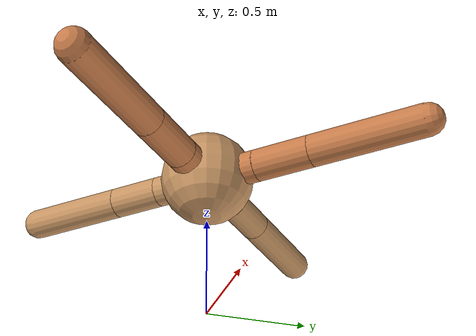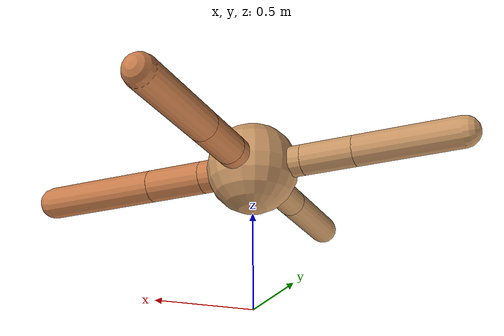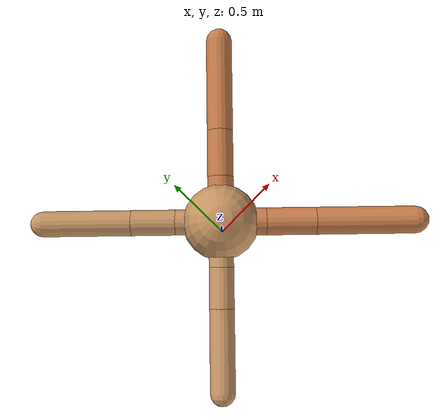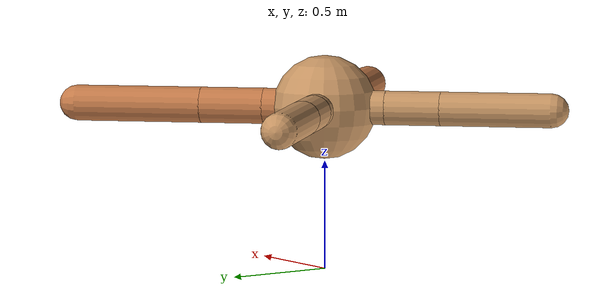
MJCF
<?xml version="1.0" ?>
<mujoco model="ant">

	<compiler angle="degree" coordinate="local" inertiafromgeom="true"/>

	<option integrator="RK4" timestep="0.01"/>

	<custom>

		<numeric data="0.0 0.0 0.55 1.0 0.0 0.0 0.0 0.0 1.0 0.0 -1.0 0.0 -1.0 0.0 1.0" name="init_qpos"/>

	</custom>

	<default>

		<joint armature="1" damping="1" limited="true"/>

		<geom conaffinity="0" condim="3" density="5.0" friction="1.5 0.1 0.1" margin="0.01" rgba="0.8 0.6 0.4 1"/>

	</default>

	<worldbody>

		<body name="torso" pos="0 0 0.75">

			<geom name="torso_geom" pos="0 0 0" size="0.238806772776089" type="sphere"/>

			<!--joint armature="0" damping="0" limited="false" margin="0.01" name="root" pos="0 0 0" type="free"/-->

			<body name="front_left_leg" pos="0 0 0">

				<geom fromto="0 0 0 0.2 0.2 0" name="aux_1_geom" size="0.0825547849038597" type="capsule" rgba=".8 .5 .3 1"/>

				<body name="aux_1" pos="0.2 0.2 0">

					<joint axis="0 0 1" name="hip_1" pos="0.0 0.0 0.0" range="-40 40" type="hinge"/>

					<geom fromto="0 0 0 0.20868841352247675 0.20868841352247675 0" name="left_leg_geom" size="0.0825547849038597" type="capsule" rgba=".8 .5 .3 1"/>

					<body pos="0.20868841352247675 0.20868841352247675 0" name="front_left_foot">

						<joint axis="-1 1 0" name="ankle_1" pos="0.0 0.0 0.0" range="30 100" type="hinge"/>

						<geom fromto="0 0 0 0.4173768270449535 0.4173768270449535 0" name="left_ankle_geom" size="0.0825547849038597" type="capsule" rgba=".8 .5 .3 1"/>

					</body>

				</body>

			</body>

			<body name="front_right_leg" pos="0 0 0">

				<geom fromto="0 0 0 -0.2 0.2 0" name="aux_2_geom" size="0.07996172986911296" type="capsule"/>

				<body name="aux_2" pos="-0.2 0.2 0">

					<joint axis="0 0 1" name="hip_2" pos="0.0 0.0 0.0" range="-40 40" type="hinge"/>

					<geom fromto="0 0 0 -0.1940522665290452 0.1940522665290452 0" name="right_leg_geom" size="0.07996172986911296" type="capsule"/>

					<body pos="-0.1940522665290452 0.1940522665290452 0" name="front_right_foot">

						<joint axis="1 1 0" name="ankle_2" pos="0.0 0.0 0.0" range="-100 -30" type="hinge"/>

						<geom fromto="0 0 0 -0.3881045330580904 0.3881045330580904 0" name="right_ankle_geom" size="0.07996172986911296" type="capsule"/>

					</body>

				</body>

			</body>

			<body name="left_back_leg" pos="0 0 0">

				<geom fromto="0 0 0 -0.2 -0.2 0" name="aux_3_geom" size="0.07818567535397505" type="capsule"/>

				<body name="aux_3" pos="-0.2 -0.2 0">

					<joint axis="0 0 1" name="hip_3" pos="0.0 0.0 0.0" range="-40 40" type="hinge"/>

					<geom fromto="0 0 0 -0.18003614632479306 -0.18003614632479306 0" name="back_leg_geom" size="0.07818567535397505" type="capsule"/>

					<body pos="-0.18003614632479306 -0.18003614632479306 0" name="left_back_foot">

						<joint axis="-1 1 0" name="ankle_3" pos="0.0 0.0 0.0" range="-100 -30" type="hinge"/>

						<geom fromto="0 0 0 -0.3600722926495861 -0.3600722926495861 0" name="third_ankle_geom" size="0.07818567535397505" type="capsule"/>

					</body>

				</body>

			</body>

			<body name="right_back_leg" pos="0 0 0">

				<geom fromto="0 0 0 0.2 -0.2 0" name="aux_4_geom" size="0.08613202848553005" type="capsule" rgba=".8 .5 .3 1"/>

				<body name="aux_4" pos="0.2 -0.2 0">

					<joint axis="0 0 1" name="hip_4" pos="0.0 0.0 0.0" range="-40 40" type="hinge"/>

					<geom fromto="0 0 0 0.21925116094731947 -0.21925116094731947 0" name="rightback_leg_geom" size="0.08613202848553005" type="capsule" rgba=".8 .5 .3 1"/>

					<body pos="0.21925116094731947 -0.21925116094731947 0" name="right_back_foot">

						<joint axis="1 1 0" name="ankle_4" pos="0.0 0.0 0.0" range="30 100" type="hinge"/>

						<geom fromto="0 0 0 0.43850232189463895 -0.43850232189463895 0" name="fourth_ankle_geom" size="0.08613202848553005" type="capsule" rgba=".8 .5 .3 1"/>

					</body>

				</body>

			</body>

		</body>

	</worldbody>

	<actuator>

		<motor ctrllimited="true" ctrlrange="-1.0 1.0" joint="hip_4" gear="150"/>

		<motor ctrllimited="true" ctrlrange="-1.0 1.0" joint="ankle_4" gear="150"/>

		<motor ctrllimited="true" ctrlrange="-1.0 1.0" joint="hip_1" gear="150"/>

		<motor ctrllimited="true" ctrlrange="-1.0 1.0" joint="ankle_1" gear="150"/>

		<motor ctrllimited="true" ctrlrange="-1.0 1.0" joint="hip_2" gear="150"/>

		<motor ctrllimited="true" ctrlrange="-1.0 1.0" joint="ankle_2" gear="150"/>

		<motor ctrllimited="true" ctrlrange="-1.0 1.0" joint="hip_3" gear="150"/>

		<motor ctrllimited="true" ctrlrange="-1.0 1.0" joint="ankle_3" gear="150"/>

	</actuator>

</mujoco>
